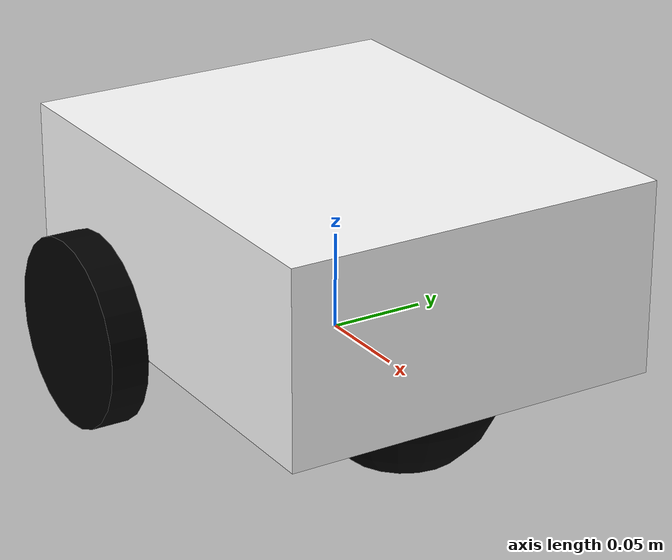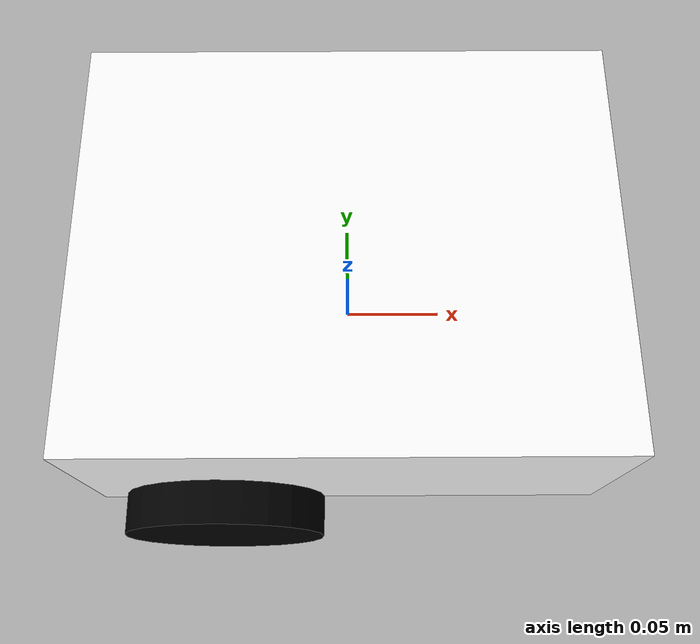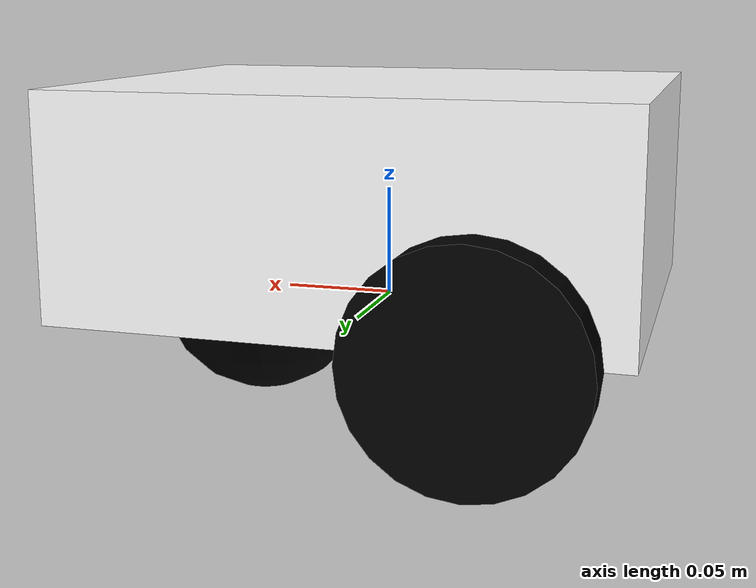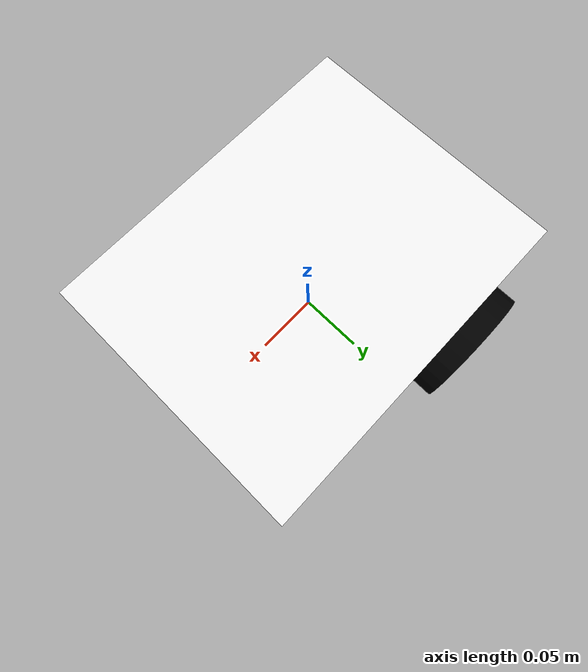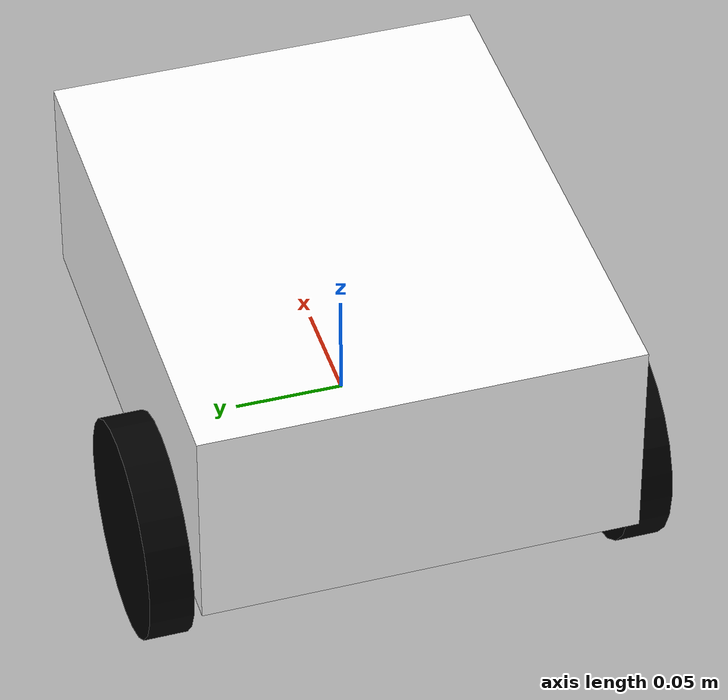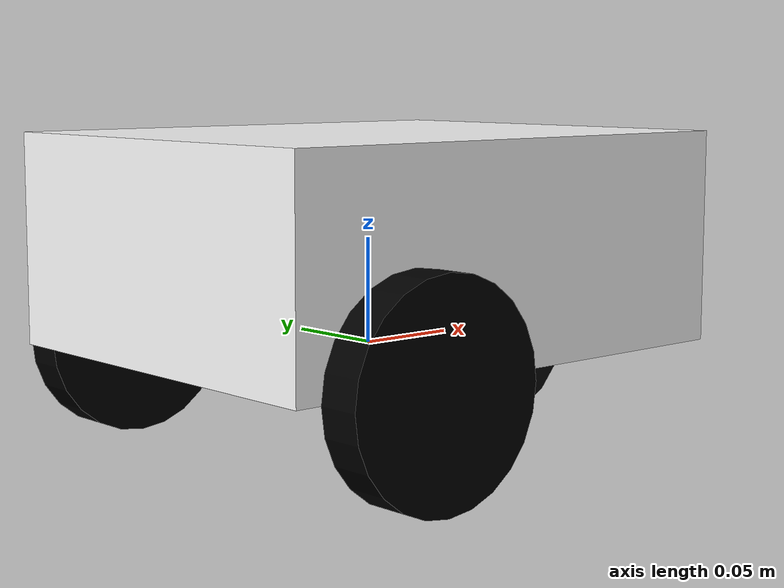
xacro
<?xml version="1.0"?>
<robot xmlns:xacro="http://www.ros.org/wiki/xacro"  name="robot">

    <xacro:include filename="inertial_macros.xacro"/>

    <material name="white">
        <color rgba='1 1 1 1'/>
    </material>

    <material name="orange">
        <color rgba='1 0.3 0.1 1'/>
    </material>
    <material name="blue">
        <color rgba='0.2 0.2 1 1'/>
    </material>
    <material name="black">
        <color rgba='0 0 0 1'/>
    </material>
    <material name="red">
        <color rgba='1 0 0 1'/>
    </material>

    <!--BASE LINK-->

    <link name="base_link">
    </link>

    <joint name="base_footprint_joint" type="fixed">
        <parent link="base_link"/>
        <child link="base_footprint"/>
        <origin xyz="0 0 0" rpy="0 0 0"/>
    </joint>

    <link name="base_footprint">

    </link>

    <!--CHASSIS LINK-->

    <joint name="chassis_joint" type="fixed">
        <parent link="base_link"/>
        <child link="chassis"/>
        <origin xyz="-0.125 0 0"/>
    </joint>

    <link name="chassis">
        <visual>
            <origin xyz="0.125 0 0.05"/>
            <geometry>
                <box size="0.25 0.2 0.1"/>
            </geometry>
            <material name="white"/>
        </visual>
        <collision>
            <origin xyz="0.125 0 0.05"/>
            <geometry>
                <box size="0.25 0.2 0.1"/>
            </geometry>
        </collision>
        <xacro:inertial_box mass="0.5" x="0.25" y="0.2" z="0.1" >
            <origin xyz="0.125 0 0.05" rpy="0 0 0"/>
        </xacro:inertial_box>
    </link>

    <gazebo reference="chassis">
        <material>Gazebo/White</material>
    </gazebo>

    <!--LEFT WHEEL LINK-->

    <joint name="left_rear" type="continuous">
        <parent link="base_link"/>
        <child link="left_wheel_rear"/>
        <origin xyz="-0.0625 0.11 0" rpy="-${pi/2} 0 0"/>
        <axis xyz="0 0 1"/>
    </joint>

    <link name="left_wheel_rear">
        <visual>
            <geometry>
                <cylinder radius="0.05" length="0.02"/>
            </geometry>
            <material name="black"/>
        </visual>
        <collision>
            <geometry>
                <cylinder radius="0.05" length="0.02"/>
            </geometry>
        </collision>
        <xacro:inertial_cylinder mass="0.1" length="0.02" radius="0.05">
            <origin xyz="0 0 0" rpy="0 0 0"/>
        </xacro:inertial_cylinder>
    </link>

    <gazebo reference="left_wheel_rear">
        <material>Gazebo/Black</material>
    </gazebo>

    <!--RIGHT WHEEL LINK-->

    <!--RIGHT REAR WHEEL-->

    <joint name="right_rear" type="continuous">
        <parent link="base_link"/>
        <child link="right_wheel_rear"/>
        <origin xyz="-0.0625 -0.11 0" rpy="${pi/2} 0 0"/>
        <axis xyz="0 0 -1"/>
    </joint>
    <link name="right_wheel_rear">
        <visual>
            <geometry>
                <cylinder radius="0.05" length="0.02"/>
            </geometry>
            <material name="black"/>
        </visual>
        <collision>
            <geometry>
                <cylinder radius="0.05" length="0.02"/>
            </geometry>
        </collision>
        <xacro:inertial_cylinder mass="0.1" length="0.02" radius="0.05">
            <origin xyz="0 0 0" rpy="0 0 0"/>
        </xacro:inertial_cylinder>
    </link>

    <gazebo reference="right_wheel_rear">
        <material>Gazebo/Black</material>
    </gazebo>

    <joint name="caster_wheel_joint" type="fixed">
        <parent link="base_link"/>
        <child link="caster_wheel"/>
        <origin xyz="0.0625 0. 0" rpy="0 0 0"/>
        <axis xyz="0 0 1"/>
    </joint>
    <link name="caster_wheel">
        <visual>
            <geometry>
                <sphere radius="0.05"/>
            </geometry>
            <material name="black"/>
        </visual>
        <collision>
            <geometry>
                <sphere radius="0.05"/>
            </geometry>
        </collision>
        <xacro:inertial_sphere mass="0.1" radius="0.05">
            <origin xyz="0 0 0" rpy="0 0 0"/>
        </xacro:inertial_sphere>
    </link>

    <gazebo reference="caster_wheel">
        <material>Gazebo/Black</material>
        <mu1 value="0.001"/>
        <mu2 value="0.001"/>
    </gazebo>

</robot>
